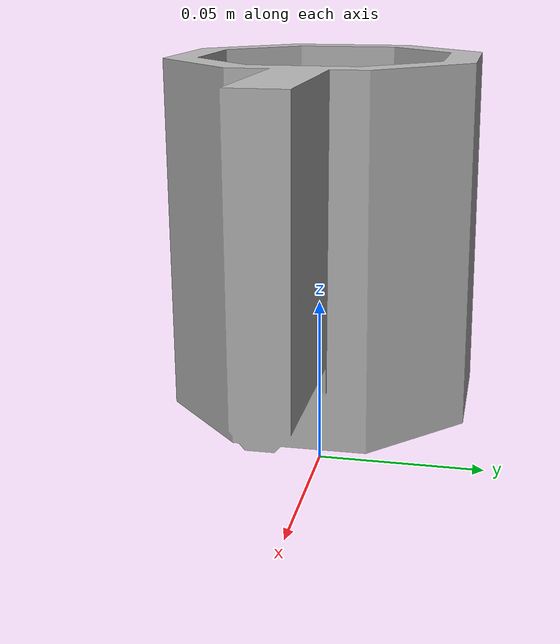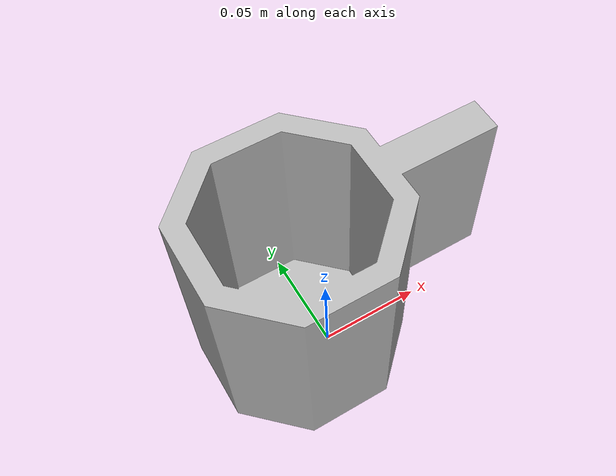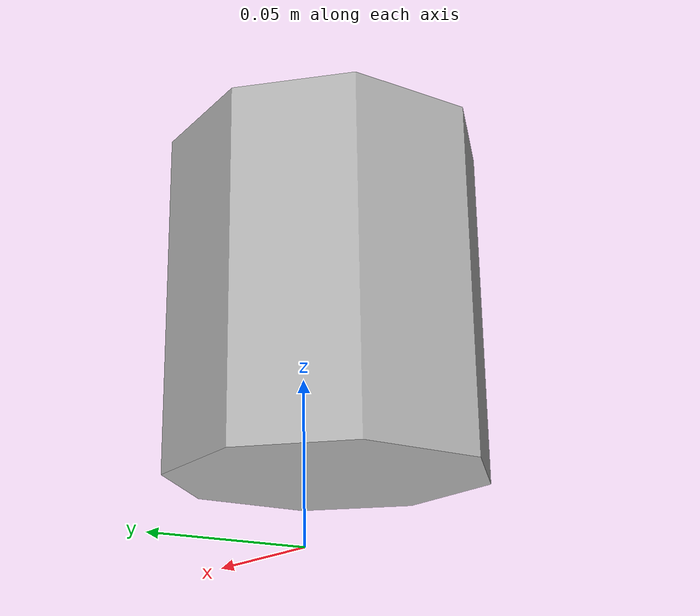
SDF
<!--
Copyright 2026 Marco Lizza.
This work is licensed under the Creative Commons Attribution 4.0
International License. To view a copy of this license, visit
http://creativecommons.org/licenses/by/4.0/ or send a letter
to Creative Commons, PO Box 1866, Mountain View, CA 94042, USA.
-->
<?xml version="1.0" ?>
<sdf version="1.6">
  <model name="Cup">
    <link name="link_0">

      <inertial>
        <mass>0.4</mass> <inertia>
          <ixx>0.0005</ixx>
          <ixy>0</ixy>
          <ixz>0</ixz>
          <iyy>0.0005</iyy>
          <iyz>0</iyz>
          <izz>0.0005</izz>
        </inertia>
      </inertial>

      <visual name="visual">
        <geometry>
          <mesh>
            <uri>meshes/cup.obj</uri>
          </mesh>
        </geometry>
      </visual>

      <collision name="collision_0">
        <geometry>
          <mesh>
            <uri>meshes/cup.obj</uri>
          </mesh>
        </geometry>
        <surface>
          <friction>
            <ode>
              <mu>5.0</mu>
              <mu2>5.0</mu2>
            </ode>
          </friction>
          <contact>
            <ode>
              <kp>100000.0</kp>
              <kd>100.0</kd>
              <min_depth>0.001</min_depth>
            </ode>
          </contact>
        </surface>
      </collision>

    </link>
  </model>
</sdf>
